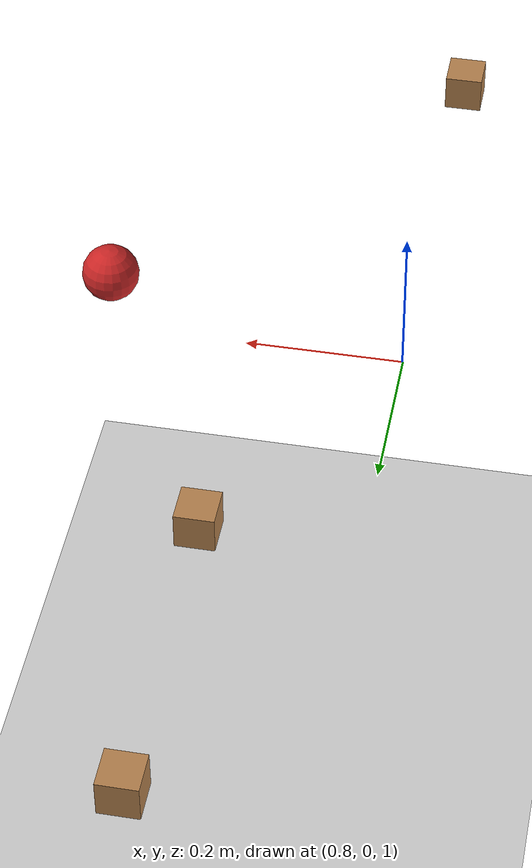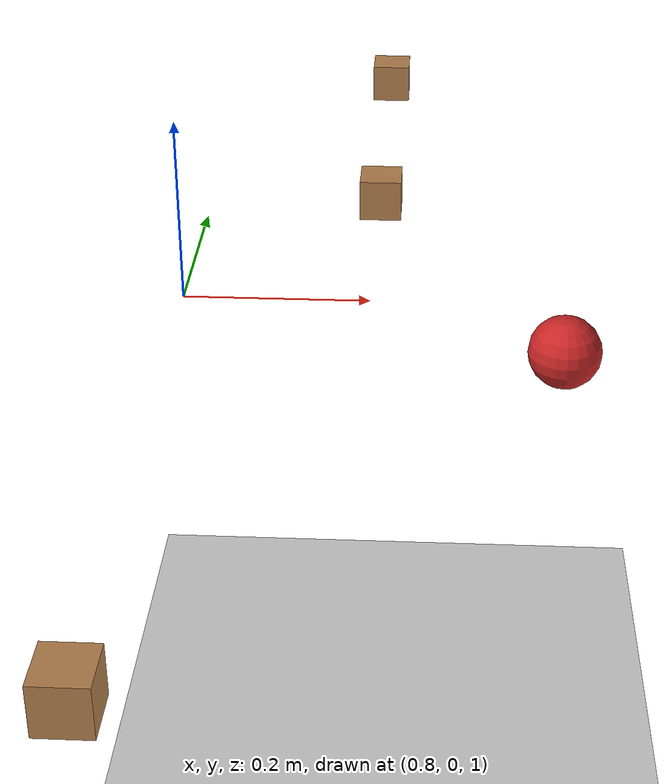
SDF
<sdf version="1.6">
 <world name="default">
  <light name="sun" type="directional">
   <pose>0 0 10 0 -0 0</pose>
   <diffuse>0.8 0.8 0.8 1</diffuse>
   <specular>0.2 0.2 0.2 1</specular>
   <attenuation>
    <range>1000</range>
    <constant>0.9</constant>
    <linear>0.01</linear>
    <quadratic>0.001</quadratic>
   </attenuation>
   <direction>-0.5 0.1 -0.9</direction>
  </light>
  <model name="ground_plane">
   <static>1</static>
   <link name="link">
    <collision name="collision">
     <geometry><plane><normal>0 0 1</normal><size>100 100</size></plane></geometry>
     <surface>
      <contact><collide_bitmask>65535</collide_bitmask></contact>
      <friction><ode><mu>100</mu><mu2>50</mu2></ode></friction>
     </surface>
    </collision>
    <visual name="visual">
     <cast_shadows>0</cast_shadows>
     <geometry><plane><normal>0 0 1</normal><size>100 100</size></plane></geometry>
     <material>
      <script><uri>file://media/materials/scripts/gazebo.material</uri><name>Gazebo/Grey</name></script>
     </material>
    </visual>
   </link>
  </model>
  <gravity>0 0 -9.8</gravity>
  <magnetic_field>6e-06 2.3e-05 -4.2e-05</magnetic_field>
  <atmosphere type="adiabatic"/>
  <physics name="default_physics" default="0" type="ode">
   <max_step_size>0.001</max_step_size>
   <real_time_factor>1</real_time_factor>
   <real_time_update_rate>1000</real_time_update_rate>
  </physics>
  <scene><ambient>0.4 0.4 0.4 1</ambient><background>0.7 0.7 0.7 1</background><shadows>1</shadows></scene>
  <spherical_coordinates>
   <surface_model>EARTH_WGS84</surface_model>
   <latitude_deg>0</latitude_deg>
   <longitude_deg>0</longitude_deg>
   <elevation>0</elevation>
   <heading_deg>0</heading_deg>
  </spherical_coordinates>
  <model name="wood_cube_5cm">
   <link name="link">
    <pose>0 0 0.025 0 -0 0</pose>
    <inertial>
     <mass>0.0565</mass>
     <inertia>
      <ixx>2.35417e-05</ixx>
      <ixy>0</ixy>
      <ixz>0</ixz>
      <iyy>2.35417e-05</iyy>
      <iyz>0</iyz>
      <izz>2.35417e-05</izz>
     </inertia>
    </inertial>
    <collision name="collision">
     <geometry><box><size>0.05 0.05 0.05</size></box></geometry>
     <surface>
      <contact>
       <poissons_ratio>0.347</poissons_ratio>
       <elastic_modulus>8.8e+09</elastic_modulus>
       <ode><kp>100000</kp><kd>1</kd><max_vel>1</max_vel><min_depth>0.001</min_depth></ode>
      </contact>
      <friction>
       <torsional>
        <coefficient>1</coefficient>
        <use_patch_radius>0</use_patch_radius>
        <surface_radius>0.05</surface_radius>
       </torsional>
      </friction>
     </surface>
    </collision>
    <visual name="visual">
     <geometry><box><size>0.05 0.05 0.05</size></box></geometry>
     <material>
      <script><uri>file://media/materials/scripts/gazebo.material</uri><name>Gazebo/Wood</name></script>
     </material>
    </visual>
   </link>
   <pose>1 0.7 0.963761 -2e-06 1e-06 -2e-06</pose>
  </model>
  <model name="wood_cube_5cm_0">
   <link name="link">
    <pose>0 0 0.025 0 -0 0</pose>
    <inertial>
     <mass>0.0565</mass>
     <inertia>
      <ixx>2.35417e-05</ixx>
      <ixy>0</ixy>
      <ixz>0</ixz>
      <iyy>2.35417e-05</iyy>
      <iyz>0</iyz>
      <izz>2.35417e-05</izz>
     </inertia>
    </inertial>
    <collision name="collision">
     <geometry><box><size>0.05 0.05 0.05</size></box></geometry>
     <surface>
      <contact>
       <poissons_ratio>0.347</poissons_ratio>
       <elastic_modulus>8.8e+09</elastic_modulus>
       <ode><kp>100000</kp><kd>1</kd><max_vel>1</max_vel><min_depth>0.001</min_depth></ode>
      </contact>
      <friction>
       <torsional>
        <coefficient>1</coefficient>
        <use_patch_radius>0</use_patch_radius>
        <surface_radius>0.05</surface_radius>
       </torsional>
      </friction>
     </surface>
    </collision>
    <visual name="visual">
     <geometry><box><size>0.05 0.05 0.05</size></box></geometry>
     <material>
      <script><uri>file://media/materials/scripts/gazebo.material</uri><name>Gazebo/Wood</name></script>
     </material>
    </visual>
   </link>
   <pose>0.8 -0.6 0.963761 7e-06 -4e-06 -0</pose>
  </model>
  <model name="wood_cube_5cm_1">
   <link name="link">
    <pose>0 0 0.025 0 -0 0</pose>
    <inertial>
     <mass>0.0565</mass>
     <inertia>
      <ixx>2.35417e-05</ixx>
      <ixy>0</ixy>
      <ixz>0</ixz>
      <iyy>2.35417e-05</iyy>
      <iyz>0</iyz>
      <izz>2.35417e-05</izz>
     </inertia>
    </inertial>
    <collision name="collision">
     <geometry><box><size>0.05 0.05 0.05</size></box></geometry>
     <surface>
      <contact>
       <poissons_ratio>0.347</poissons_ratio>
       <elastic_modulus>8.8e+09</elastic_modulus>
       <ode><kp>100000</kp><kd>1</kd><max_vel>1</max_vel><min_depth>0.001</min_depth></ode>
      </contact>
      <friction>
       <torsional>
        <coefficient>1</coefficient>
        <use_patch_radius>0</use_patch_radius>
        <surface_radius>0.05</surface_radius>
       </torsional>
      </friction>
     </surface>
    </collision>
    <visual name="visual">
     <geometry><box><size>0.05 0.05 0.05</size></box></geometry>
     <material>
      <script><uri>file://media/materials/scripts/gazebo.material</uri><name>Gazebo/Wood</name></script>
     </material>
    </visual>
   </link>
   <pose>1 0.3 0.96376 0 -0 0</pose>
  </model>
  <model name="wood_cube_5cm_2">
   <link name="link">
    <pose>0 0 0.025 0 -0 0</pose>
    <inertial>
     <mass>0.0565</mass>
     <inertia>
      <ixx>2.35417e-05</ixx>
      <ixy>0</ixy>
      <ixz>0</ixz>
      <iyy>2.35417e-05</iyy>
      <iyz>0</iyz>
      <izz>2.35417e-05</izz>
     </inertia>
    </inertial>
    <collision name="collision">
     <geometry><box><size>0.05 0.05 0.05</size></box></geometry>
     <surface>
      <contact>
       <poissons_ratio>0.347</poissons_ratio>
       <elastic_modulus>8.8e+09</elastic_modulus>
       <ode><kp>100000</kp><kd>1</kd><max_vel>1</max_vel><min_depth>0.001</min_depth></ode>
      </contact>
      <friction>
       <torsional>
        <coefficient>1</coefficient>
        <use_patch_radius>0</use_patch_radius>
        <surface_radius>0.05</surface_radius>
       </torsional>
      </friction>
     </surface>
    </collision>
    <visual name="visual">
     <geometry><box><size>0.05 0.05 0.05</size></box></geometry>
     <material>
      <script><uri>file://media/materials/scripts/gazebo.material</uri><name>Gazebo/Wood</name></script>
     </material>
    </visual>
   </link>
   <pose>1 0.3 0.96376 0 -0 0</pose>
  </model>
  <model name="wood_cube_5cm_3">
   <link name="link">
    <pose>0 0 0.025 0 -0 0</pose>
    <inertial>
     <mass>0.0565</mass>
     <inertia>
      <ixx>2.35417e-05</ixx>
      <ixy>0</ixy>
      <ixz>0</ixz>
      <iyy>2.35417e-05</iyy>
      <iyz>0</iyz>
      <izz>2.35417e-05</izz>
     </inertia>
    </inertial>
    <collision name="collision">
     <geometry><box><size>0.05 0.05 0.05</size></box></geometry>
     <surface>
      <contact>
       <poissons_ratio>0.347</poissons_ratio>
       <elastic_modulus>8.8e+09</elastic_modulus>
       <ode><kp>100000</kp><kd>1</kd><max_vel>1</max_vel><min_depth>0.001</min_depth></ode>
      </contact>
      <friction>
       <torsional>
        <coefficient>1</coefficient>
        <use_patch_radius>0</use_patch_radius>
        <surface_radius>0.05</surface_radius>
       </torsional>
      </friction>
     </surface>
    </collision>
    <visual name="visual">
     <geometry><box><size>0.05 0.05 0.05</size></box></geometry>
     <material>
      <script><uri>file://media/materials/scripts/gazebo.material</uri><name>Gazebo/Wood</name></script>
     </material>
    </visual>
   </link>
   <pose>1 0.3 0.96376 0 -0 0</pose>
  </model>
  <model name="cricket_ball">
   <link name="link">
    <pose>0 0 0.0375 0 -0 0</pose>
    <inertial>
     <mass>0.1467</mass>
     <inertia>
      <ixx>8.25187e-05</ixx>
      <ixy>0</ixy>
      <ixz>0</ixz>
      <iyy>8.25187e-05</iyy>
      <iyz>0</iyz>
      <izz>8.25187e-05</izz>
     </inertia>
    </inertial>
    <collision name="collision">
     <geometry><sphere><radius>0.0375</radius></sphere></geometry>
     <surface>
      <contact>
       <poissons_ratio>0.347</poissons_ratio>
       <elastic_modulus>8.8e+09</elastic_modulus>
       <ode><kp>100000</kp><kd>100</kd><max_vel>100</max_vel><min_depth>0.001</min_depth></ode>
      </contact>
      <friction>
       <torsional>
        <coefficient>1</coefficient>
        <use_patch_radius>0</use_patch_radius>
        <surface_radius>0.01</surface_radius>
       </torsional>
      </friction>
     </surface>
    </collision>
    <visual name="visual">
     <geometry><sphere><radius>0.0375</radius></sphere></geometry>
     <material>
      <script><uri>file://media/materials/scripts/gazebo.material</uri><name>Gazebo/Red</name></script>
     </material>
    </visual>
    <velocity_decay><linear>0</linear><angular>0.005</angular></velocity_decay>
   </link>
   <pose>1.2 -0.1 0.963747 0 -0 0</pose>
  </model>
  <model name="cricket_ball0">
   <link name="link">
    <pose>0 0 0.0375 0 -0 0</pose>
    <inertial>
     <mass>0.1467</mass>
     <inertia>
      <ixx>8.25187e-05</ixx>
      <ixy>0</ixy>
      <ixz>0</ixz>
      <iyy>8.25187e-05</iyy>
      <iyz>0</iyz>
      <izz>8.25187e-05</izz>
     </inertia>
    </inertial>
    <collision name="collision">
     <geometry><sphere><radius>0.0375</radius></sphere></geometry>
     <surface>
      <contact>
       <poissons_ratio>0.347</poissons_ratio>
       <elastic_modulus>8.8e+09</elastic_modulus>
       <ode><kp>100000</kp><kd>100</kd><max_vel>100</max_vel><min_depth>0.001</min_depth></ode>
      </contact>
      <friction>
       <torsional>
        <coefficient>1</coefficient>
        <use_patch_radius>0</use_patch_radius>
        <surface_radius>0.01</surface_radius>
       </torsional>
      </friction>
     </surface>
    </collision>
    <visual name="visual">
     <geometry><sphere><radius>0.0375</radius></sphere></geometry>
     <material>
      <script><uri>file://media/materials/scripts/gazebo.material</uri><name>Gazebo/Red</name></script>
     </material>
    </visual>
    <velocity_decay><linear>0</linear><angular>0.005</angular></velocity_decay>
   </link>
   <pose>1.2 -0.1 0.963747 0 -0 0</pose>
  </model>
  <model name="cricket_ball1">
   <link name="link">
    <pose>0 0 0.0375 0 -0 0</pose>
    <inertial>
     <mass>0.1467</mass>
     <inertia>
      <ixx>8.25187e-05</ixx>
      <ixy>0</ixy>
      <ixz>0</ixz>
      <iyy>8.25187e-05</iyy>
      <iyz>0</iyz>
      <izz>8.25187e-05</izz>
     </inertia>
    </inertial>
    <collision name="collision">
     <geometry><sphere><radius>0.0375</radius></sphere></geometry>
     <surface>
      <contact>
       <poissons_ratio>0.347</poissons_ratio>
       <elastic_modulus>8.8e+09</elastic_modulus>
       <ode><kp>100000</kp><kd>100</kd><max_vel>100</max_vel><min_depth>0.001</min_depth></ode>
      </contact>
      <friction>
       <torsional>
        <coefficient>1</coefficient>
        <use_patch_radius>0</use_patch_radius>
        <surface_radius>0.01</surface_radius>
       </torsional>
      </friction>
     </surface>
    </collision>
    <visual name="visual">
     <geometry><sphere><radius>0.0375</radius></sphere></geometry>
     <material>
      <script><uri>file://media/materials/scripts/gazebo.material</uri><name>Gazebo/Red</name></script>
     </material>
    </visual>
    <velocity_decay><linear>0</linear><angular>0.005</angular></velocity_decay>
   </link>
   <pose>1.2 -0.1 0.963747 0 -0 0</pose>
  </model>
  <model name="cricket_ball2">
   <link name="link">
    <pose>0 0 0.0375 0 -0 0</pose>
    <inertial>
     <mass>0.1467</mass>
     <inertia>
      <ixx>8.25187e-05</ixx>
      <ixy>0</ixy>
      <ixz>0</ixz>
      <iyy>8.25187e-05</iyy>
      <iyz>0</iyz>
      <izz>8.25187e-05</izz>
     </inertia>
    </inertial>
    <collision name="collision">
     <geometry><sphere><radius>0.0375</radius></sphere></geometry>
     <surface>
      <contact>
       <poissons_ratio>0.347</poissons_ratio>
       <elastic_modulus>8.8e+09</elastic_modulus>
       <ode><kp>100000</kp><kd>100</kd><max_vel>100</max_vel><min_depth>0.001</min_depth></ode>
      </contact>
      <friction>
       <torsional>
        <coefficient>1</coefficient>
        <use_patch_radius>0</use_patch_radius>
        <surface_radius>0.01</surface_radius>
       </torsional>
      </friction>
     </surface>
    </collision>
    <visual name="visual">
     <geometry><sphere><radius>0.0375</radius></sphere></geometry>
     <material>
      <script><uri>file://media/materials/scripts/gazebo.material</uri><name>Gazebo/Red</name></script>
     </material>
    </visual>
    <velocity_decay><linear>0</linear><angular>0.005</angular></velocity_decay>
   </link>
   <pose>1.2 -0.1 0.963747 0 -0 0</pose>
  </model>
  <model name="cricket_ball3">
   <link name="link">
    <pose>0 0 0.0375 0 -0 0</pose>
    <inertial>
     <mass>0.1467</mass>
     <inertia>
      <ixx>8.25187e-05</ixx>
      <ixy>0</ixy>
      <ixz>0</ixz>
      <iyy>8.25187e-05</iyy>
      <iyz>0</iyz>
      <izz>8.25187e-05</izz>
     </inertia>
    </inertial>
    <collision name="collision">
     <geometry><sphere><radius>0.0375</radius></sphere></geometry>
     <surface>
      <contact>
       <poissons_ratio>0.347</poissons_ratio>
       <elastic_modulus>8.8e+09</elastic_modulus>
       <ode><kp>100000</kp><kd>100</kd><max_vel>100</max_vel><min_depth>0.001</min_depth></ode>
      </contact>
      <friction>
       <torsional>
        <coefficient>1</coefficient>
        <use_patch_radius>0</use_patch_radius>
        <surface_radius>0.01</surface_radius>
       </torsional>
      </friction>
     </surface>
    </collision>
    <visual name="visual">
     <geometry><sphere><radius>0.0375</radius></sphere></geometry>
     <material>
      <script><uri>file://media/materials/scripts/gazebo.material</uri><name>Gazebo/Red</name></script>
     </material>
    </visual>
    <velocity_decay><linear>0</linear><angular>0.005</angular></velocity_decay>
   </link>
   <pose>1.2 -0.1 0.963747 0 -0 0</pose>
  </model>
 </world>
</sdf>
